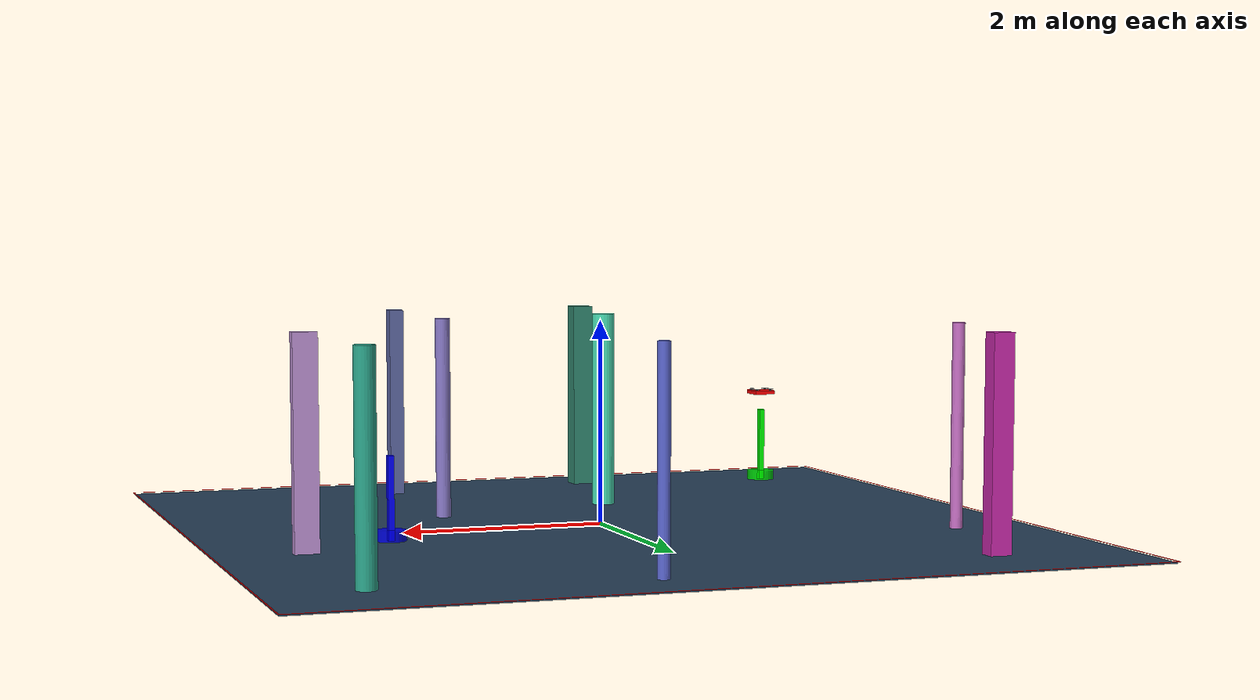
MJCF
<?xml version='1.0' encoding='utf-8'?>
<mujoco model="complex_uav_env">
  <compiler angle="degree" coordinate="local" inertiafromgeom="true" />
  <option integrator="RK4" timestep="0.01" />

  <visual>
    <headlight diffuse="0.6 0.6 0.6" ambient="0.3 0.3 0.3" />
    <rgba haze="0.15 0.25 0.35 1" />
    <global offwidth="2560" offheight="1440" />
  </visual>

  <asset>
    <texture type="skybox" builtin="gradient" rgb1="0.3 0.5 0.7" rgb2="0 0 0" width="512" height="3072" />
    <texture name="grid" type="2d" builtin="checker" rgb1="0.1 0.2 0.3" rgb2="0.2 0.3 0.4" width="512" height="512" />
    <material name="grid" texture="grid" texrepeat="1 1" />
  </asset>

  <worldbody>

    <geom name="ground" type="plane" size="4.0 4.0 0.1" material="grid" />
    <light name="light1" pos="0 0 4" dir="0 0 -1" diffuse="1 1 1" />

    <geom name="start_marker" type="cylinder" size="0.15 0.05" pos="-3.0 -3.0 0.05" rgba="0 1 0 0.8" />
    <geom name="start_pole" type="box" size="0.03 0.03 0.4" pos="-3.0 -3.0 0.4" rgba="0 1 0 1" />

    <geom name="goal_marker" type="cylinder" size="0.15 0.05" pos="2.2288659485711833 0.44087313673035 0.05" rgba="0 0 1 0.8" />
    <geom name="goal_pole" type="box" size="0.03 0.03 0.4" pos="2.2288659485711833 0.44087313673035 0.4" rgba="0 0 1 1" />

    <body name="chassis" pos="-3.0 -3.0 1.0">
      <joint type="free" name="root" />
      <geom type="box" size="0.12 0.12 0.02" rgba="1.0 0.0 0.0 1.0" mass="0.8" />

      <geom type="box" size="0.08 0.01 0.005" pos="0 0 0.01" rgba="0.3 0.3 0.3 1" />
      <geom type="box" size="0.01 0.08 0.005" pos="0 0 0.01" rgba="0.3 0.3 0.3 1" />

      <geom type="cylinder" size="0.015 0.02" pos="0.08 0.08 0.015" rgba="0.2 0.2 0.2 1" />
      <geom type="cylinder" size="0.015 0.02" pos="-0.08 0.08 0.015" rgba="0.2 0.2 0.2 1" />
      <geom type="cylinder" size="0.015 0.02" pos="0.08 -0.08 0.015" rgba="0.2 0.2 0.2 1" />
      <geom type="cylinder" size="0.015 0.02" pos="-0.08 -0.08 0.015" rgba="0.2 0.2 0.2 1" />

      <geom type="cylinder" size="0.04 0.002" pos="0.08 0.08 0.035" rgba="0.7 0.7 0.7 0.8" />
      <geom type="cylinder" size="0.04 0.002" pos="-0.08 0.08 0.035" rgba="0.7 0.7 0.7 0.8" />
      <geom type="cylinder" size="0.04 0.002" pos="0.08 -0.08 0.035" rgba="0.7 0.7 0.7 0.8" />
      <geom type="cylinder" size="0.04 0.002" pos="-0.08 -0.08 0.035" rgba="0.7 0.7 0.7 0.8" />

      <site name="motor1" pos="0.08 0.08 0" size="0.01" />
      <site name="motor2" pos="-0.08 0.08 0" size="0.01" />
      <site name="motor3" pos="0.08 -0.08 0" size="0.01" />
      <site name="motor4" pos="-0.08 -0.08 0" size="0.01" />
    </body>
    <geom name="test_obs_0" type="box" size="0.10417954810820627 0.07994709170519132 1.0" pos="-2.688722909545901 3.089853737289886 1.0" rgba="0.7975726529883435 0.16178052320553837 0.6763097422071175 1.0" />
    <geom name="test_obs_1" type="box" size="0.11132718738329678 0.10262510460636425 1.0" pos="-0.9180044654776043 -3.3190757870580545 1.0" rgba="0.19240692801630238 0.5384630344250815 0.4408185825097407 1.0" />
    <geom name="test_obs_2" type="cylinder" size="0.07391879297738274 1.0" pos="1.3164019742356363 -1.025480821551962 1.0" rgba="0.5471651202784164 0.48471030164454953 0.7966583457863463 1.0" />
    <geom name="test_obs_3" type="cylinder" size="0.09312085046893753 1.0" pos="3.0963653613862103 3.0973848023009434 1.0" rgba="0.17474477559531545 0.6666997419671233 0.5622357723378855 1.0" />
    <geom name="test_obs_4" type="cylinder" size="0.057208146861371434 1.0" pos="0.6141437069648762 3.3699942969125707 1.0" rgba="0.3650908617092621 0.4106622616302905 0.8299973287458623 1.0" />
    <geom name="test_obs_5" type="cylinder" size="0.060945486855758124 1.0" pos="-3.169037561856258 1.4149406608059811 1.0" rgba="0.7983821822138383 0.45015309856504204 0.7891824842332603 1.0" />
    <geom name="test_obs_6" type="box" size="0.07615236657122246 0.07129080079453515 1.0" pos="1.2930803539855646 -3.064738382138197 1.0" rgba="0.37701709168368325 0.41717989221381957 0.6535416403306211 1.0" />
    <geom name="test_obs_7" type="cylinder" size="0.11536323697993837 1.0" pos="-0.5480147728458119 -1.483978055651812 1.0" rgba="0.2951885555694707 0.893024614236354 0.7251788508945377 1.0" />
    <geom name="test_obs_8" type="box" size="0.11711956394205522 0.05010901858039931 1.0" pos="3.1462302165794553 0.9813860891590543 1.0" rgba="0.7589267331783062 0.5828467605240507 0.8415192226179865 1.0" />
  <geom name="boundary_north" type="box" size="4.0 0.005 0.002" pos="0 4.0 0.002" rgba="1.0 0.0 0.0 1.0" /><geom name="boundary_south" type="box" size="4.0 0.005 0.002" pos="0 -4.0 0.002" rgba="1.0 0.0 0.0 1.0" /><geom name="boundary_east" type="box" size="0.005 4.0 0.002" pos="4.0 0 0.002" rgba="1.0 0.0 0.0 1.0" /><geom name="boundary_west" type="box" size="0.005 4.0 0.002" pos="-4.0 0 0.002" rgba="1.0 0.0 0.0 1.0" /></worldbody>

  <actuator>
    <motor name="m1" gear="0 0 1 0 0 0" site="motor1" />
    <motor name="m2" gear="0 0 1 0 0 0" site="motor2" />
    <motor name="m3" gear="0 0 1 0 0 0" site="motor3" />
    <motor name="m4" gear="0 0 1 0 0 0" site="motor4" />
  </actuator>
</mujoco>
